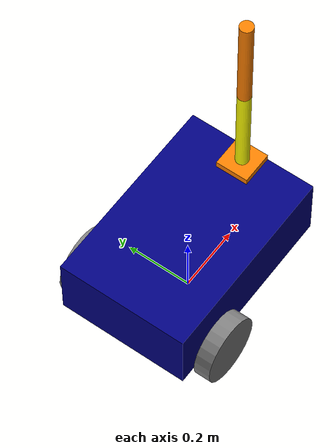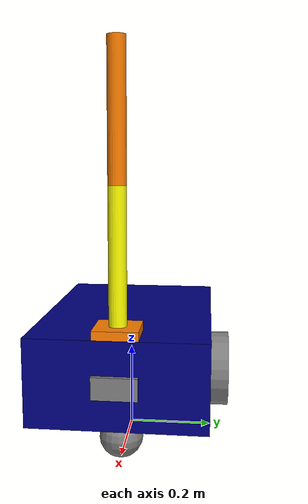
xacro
<?xml version="1.0"?>

<robot name="my_robot" xmlns:xacro="http://www.ros.org/wiki/xacro">
<xacro:include filename="$(find my_robot_description)/urdf/common_properties.xacro"/>
<xacro:include filename="$(find my_robot_description)/urdf/mobile_base.xacro"/>
<xacro:include filename="$(find my_robot_description)/urdf/camera.xacro"/>
<xacro:include filename="$(find my_robot_description)/urdf/mobile_arm.xacro"/>
<xacro:include filename="$(find my_robot_description)/urdf/my_robot_control.urdf.xacro"/>
<xacro:include filename="$(find my_robot_description)/urdf/arm_gazebo.xacro"/>

<joint name = "arm_base_joint" type="fixed">
    <parent link="base_link"/>
    <child link = "arm_base_footprint"/>
    <origin xyz="${base_length/2 - arm_base_length/2} 0 ${base_height+arm_base_height/2}" rpy="0 0 0"/>
</joint>

</robot>

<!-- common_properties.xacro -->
<robot xmlns:xacro="http://www.ros.org/wiki/xacro">
    <material name="blue">
        <color rgba="0 0 0.5 1"/>
    </material>
    <material name="grey">
        <color rgba="0.5 0.5 0.5 1"/>
    </material>
    <material name="orange">
        <color rgba="1.0 0.5 0 1"/>
    </material>
    <material name="yellow">
        <color rgba="1.0 1.0 0 1"/>
    </material>

    <xacro:macro name="box_inertia" params="m l w h xyz rpy">
        <inertial>
            <mass value="${m}" />
            <origin xyz="${xyz}" rpy ="${rpy}" />
            <inertia ixx="${(m/12) * (h*h + l*l)}" ixy="0" ixz="0"
                     iyy="${(m/12) * (w*w + l*l)}" iyz ="0"
                     izz="${(m/12) * (h*h + w*w )}" />
        </inertial>
    </xacro:macro>

    <xacro:macro name="wheel_inertia" params="m r l xyz rpy">
        <inertial>
            <mass value="${m}" />
            <origin xyz="${xyz}" rpy ="${rpy}" />
            <inertia ixx="${(m/12) * (3*r*r + l*l)}" ixy="0" ixz="0"
                     iyy="${(m/12) * (3*r*r + l*l)}" iyz ="0"
                     izz="${m*r*r/2}" />
        </inertial>
    </xacro:macro>

    <xacro:macro name="caster_wheel_inertia" params="m r xyz rpy">
        <inertial>
            <mass value="${m}" />
            <origin xyz="${xyz}" rpy ="${rpy}" />
            <inertia ixx="${2/5*m*r*r}" ixy="0" ixz="0"
                     iyy="${2/5*m*r*r}" iyz ="0"
                     izz="${2/5*m*r*r}" />
        </inertial>
    </xacro:macro>

</robot>

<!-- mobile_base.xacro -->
<robot xmlns:xacro="http://www.ros.org/wiki/xacro">

    <xacro:property name="base_length" value="0.6"/>
    <xacro:property name="base_width" value="0.4"/>
    <xacro:property name="base_height" value="0.2"/>
    <xacro:property name="wheel_radius" value="0.1"/>
    <xacro:property name="wheel_length" value="0.05"/>

    <link name="base_footprint" />

    <joint name = "base_joint" type="fixed">
        <parent link="base_footprint"/>
        <child link = "base_link"/>
        <origin xyz="0 0 ${wheel_radius}" rpy="0 0 0"/>
    </joint>

    <link name="base_link">
        <visual>
            <geometry>
                <box size="${base_length} ${base_width} ${base_height}" />
            </geometry>
            <origin xyz="0 0 ${base_height/2.0}" rpy="0 0 0" />
            <material name="blue" />
        </visual>
        <collision>
            <geometry>
                <box size="${base_length} ${base_width} ${base_height}" />
            </geometry>
            <origin xyz="0 0 ${base_height / 2.0}" rpy="0 0 0" />
        </collision>
        <xacro:box_inertia  m="0.5" l="${base_length}" w="${base_width}" h="${base_height}"
                            xyz="0 0 ${base_height/2.0}" rpy="0 0 0"/>
    </link>

    <xacro:macro name="wheel_link" params="prefix">
        <link name="${prefix}_wheel_link">
            <visual>
                <geometry>
                    <cylinder radius="${wheel_radius}" length="${wheel_length}"/>
                </geometry>
                <origin xyz="0 0 0" rpy="${pi/2.0} 0 0"/>
                <material name="grey"/>
            </visual>
            <collision>
                <geometry>
                    <cylinder radius="${wheel_radius}" length="${wheel_length}"/>
                </geometry>
                <origin xyz="0 0 0" rpy="${pi/2.0} 0 0"/>
            </collision>
            <xacro:wheel_inertia  m="1.0" r="${wheel_radius}" l="${wheel_length}"
                                    xyz="0 0 0" rpy="${pi/2.0} 0 0"/>
        </link>
    </xacro:macro>

    <joint name = "base_right_wheel_joint" type="continuous">
        <parent link="base_link"/>
        <child link = "right_wheel_link"/>
        <origin xyz="${-base_length/4} ${-base_width/1.7778} 0" rpy="0 0 0"/>
        <axis xyz="0 1 0"/>
    </joint>

    <xacro:wheel_link prefix="right"/>

    <joint name = "base_left_wheel_joint" type="continuous">
        <parent link="base_link"/>
        <child link = "left_wheel_link"/>
        <origin xyz="${-base_length/4} ${base_width/1.7778} 0" rpy="0 0 0"/>
        <axis xyz="0 1 0"/>
    </joint>

    <xacro:wheel_link prefix="left"/>

    <joint name = "base_caster_wheel_joint" type="fixed">
        <parent link="base_link"/>
        <child link = "caster_wheel_link"/>
        <origin xyz="${base_length/3} 0 ${-wheel_radius/2} " rpy="0 0 0"/>
    </joint>

    <link name="caster_wheel_link">
        <visual>
            <geometry>
                <sphere radius="${wheel_radius/2}"/>
            </geometry>
            <origin xyz="0 0 0" rpy="0 0 0"/>
            <material name="grey"/>
        </visual>
        <collision>
            <geometry>
                <sphere radius="${wheel_radius/2}"/>
            </geometry>
            <origin xyz="0 0 0" rpy="0 0 0"/>
        </collision>
        <xacro:caster_wheel_inertia  m="0.5" r="${wheel_radius/2}" xyz="0 0 0" rpy="0 0 0"/>
    </link>

</robot>

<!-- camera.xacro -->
<robot name="my_robot" xmlns:xacro="http://www.ros.org/wiki/xacro">

    <xacro:property name="camera_length" value="0.01" />
    <xacro:property name="camera_width" value="0.1" />
    <xacro:property name="camera_height" value="0.05" />

    <link name="camera_link_optical"/>

    <joint name="camera_optical_joint" type="fixed">
      <origin xyz="0 0 0" rpy="${-pi/2} 0 ${-pi/2}"/>
      <parent link="camera_link"/>
      <child link="camera_link_optical"/>
    </joint>

    <link name="camera_link">
        <visual>
            <geometry>
                <box size ="${camera_length} ${camera_width} ${camera_height}"/>
            </geometry>
            <material name="grey"/>
        </visual>
        <collision>
            <geometry>
                <box size ="${camera_length} ${camera_width} ${camera_height}"/>
            </geometry>
        </collision>
        <xacro:box_inertia m = "0.1" l="${camera_length}" w="${camera_width}" h="${camera_height}" xyz="0 0 0" rpy="0 0 0"/>
    </link>
    <joint name="base_camera_joint" type="fixed">
        <parent link="base_link"/>
        <child link="camera_link"/>
        <origin xyz="${base_length/2+camera_length} 0 ${base_height/2}" rpy="0 0 0"/>
    </joint>

    <gazebo reference="camera_link">
        <sensor name="camera_sensor" type="camera">
          <camera>
            <horizontal_fov>1.3962634</horizontal_fov>
            <image>
              <width>640</width>
              <height>480</height>
              <format>R8G8B8</format>
            </image>
            <clip>
              <near>0.1</near>
              <far>15</far>
            </clip>
            <noise>
              <type>gaussian</type>
              <mean>0.0</mean>
              <stddev>0.007</stddev>
            </noise>
            <optical_frame_id>camera_link_optical</optical_frame_id>
            <camera_info_topic>camera/camera_info</camera_info_topic>
          </camera>
          <always_on>1</always_on>
          <update_rate>30</update_rate>
          <visualize>true</visualize>
          <topic>camera/image_raw </topic>
        </sensor>
    </gazebo>
</robot>

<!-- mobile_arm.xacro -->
<robot name="my_robot" xmlns:xacro="http://www.ros.org/wiki/xacro">

    <xacro:property name="arm_base_length" value="0.1"/>
    <xacro:property name="arm_base_width" value="0.1"/>
    <xacro:property name="arm_base_height" value="0.02"/>
    <xacro:property name="forearm_link_radius" value="0.02"/>
    <xacro:property name="forearm_link_length" value="0.3"/>
    <xacro:property name="hand_link_radius" value="0.02"/>
    <xacro:property name="hand_link_length" value="0.3"/>

        <link name="arm_base_footprint"/>
        <joint name = "base_footprint_arm_joint" type="fixed">
            <parent link="arm_base_footprint"/>
            <child link = "arm_base_link"/>
            <origin xyz="0 0 0" rpy="0 0 0"/>
        </joint>

        <link name="arm_base_link">
            <visual>
                <geometry>
                    <box size="${arm_base_length} ${arm_base_width} ${arm_base_height}" />
                </geometry>
                <origin xyz="0 0 0" rpy="0 0 0" />
                <material name="orange"/>
            </visual>
            <collision>
                <geometry>
                    <box size="${arm_base_length} ${arm_base_width} ${arm_base_height}" />
                </geometry>
                <origin xyz="0 0 0" rpy="0 0 0" />
            </collision>
            <xacro:box_inertia  m="0.5" l="${arm_base_length}" w="${arm_base_width}" h="${arm_base_height}"
                                xyz="0 0 0" rpy="${pi/2} 0 0"/>
        </link>

        <joint name = "base_forarm_joint" type="revolute">
            <parent link="arm_base_link"/>
            <child link = "forearm_link"/>
            <origin xyz="0 0 ${arm_base_height/2}" rpy="0 0 0"/>
            <axis xyz="0 1 0"/>
            <dynamics damping="0.1" friction="0.1"/>
            <limit lower="0" upper="${pi/2}" effort="100" velocity="100"/>
        </joint>

        <link name="forearm_link">
            <visual>
                <geometry>
                    <cylinder radius="${forearm_link_radius}" length="${forearm_link_length}" />
                </geometry>
                <origin xyz="0 0 ${forearm_link_length/2.0}" rpy="0 0 0" />
                <material name="yellow"/>
            </visual>
            <collision>
                <geometry>
                    <cylinder radius="${forearm_link_radius}" length="${forearm_link_length}" />
                </geometry>
                <origin xyz="0 0 ${forearm_link_length/2.0}" rpy="0 0 0" />
            </collision>
            <xacro:wheel_inertia  m="0.3" r="${forearm_link_radius}" l="${forearm_link_length}"
                                    xyz="0 0 ${forearm_link_length/2.0}" rpy="0 0 0"/>
        </link>

        <link name="hand_link">
            <visual>
                <geometry>
                    <cylinder radius="${hand_link_radius}" length="${hand_link_length}" />
                </geometry>
                <origin xyz="0 0 ${hand_link_length/2.0}" rpy="0 0 0" />
                <material name="orange"/>
            </visual>
            <collision>
                <geometry>
                    <cylinder radius="${hand_link_radius}" length="${hand_link_length}" />
                </geometry>
                <origin xyz="0 0 ${hand_link_length/2.0}" rpy="0 0 0" />
            </collision>
            <xacro:wheel_inertia  m="0.3" r="${hand_link_radius}" l="${hand_link_length}"
                                    xyz="0 0 ${hand_link_length/2.0}" rpy="0 0 0"/>
        </link>

        <joint name = "forearm_hand_joint" type="revolute">
            <parent link="forearm_link"/>
            <child link = "hand_link"/>
            <origin xyz="0 0 ${hand_link_length}" rpy="0 0 0"/>
            <axis xyz="0 1 0"/>
            <dynamics damping="0.1" friction="0.1"/>
            <limit lower="0" upper="${pi/2}" effort="100" velocity="100"/>
        </joint>
</robot>
